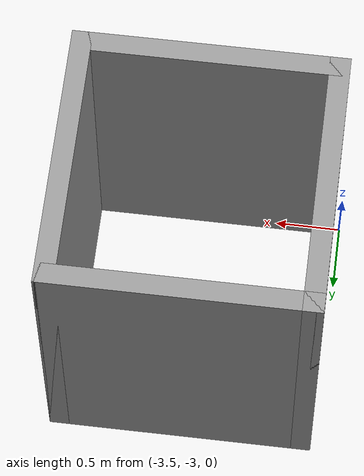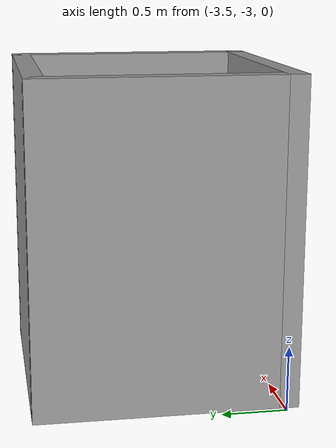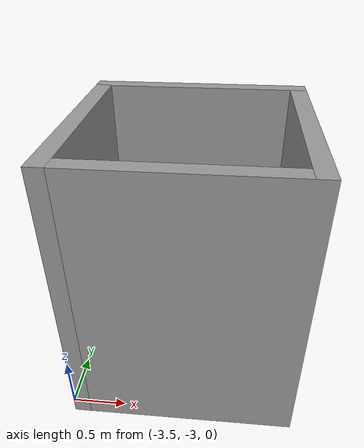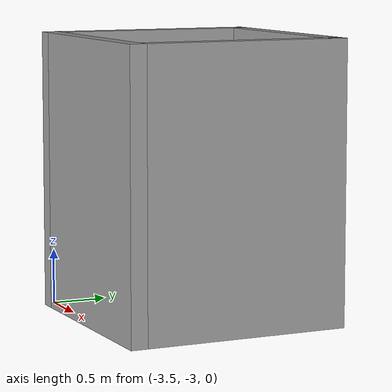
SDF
<?xml version='1.0'?>
<sdf version='1.7'>
  <model name='Untitled'>
    <pose>-1.7275 -1.5525 0 0 -0 0</pose>
    <link name='Wall_0'>
      <collision name='Wall_0_Collision'>
        <geometry>
          <box>
            <size>2 0.15 2.5</size>
          </box>
        </geometry>
        <pose>0 0 1.25 0 -0 0</pose>
      </collision>
      <visual name='Wall_0_Visual'>
        <pose>0 0 1.25 0 -0 0</pose>
        <geometry>
          <box>
            <size>2 0.15 2.5</size>
          </box>
        </geometry>
        <material>
          <script>
            <uri>file://media/materials/scripts/gazebo.material</uri>
            <name>Gazebo/Grey</name>
          </script>
          <ambient>1 1 1 1</ambient>
        </material>
        <meta>
          <layer>0</layer>
        </meta>
      </visual>
      <pose>-1.6525 -0.5525 0 0 -0 1.5708</pose>
    </link>
    <link name='Wall_1'>
      <collision name='Wall_1_Collision'>
        <geometry>
          <box>
            <size>2 0.15 2.5</size>
          </box>
        </geometry>
        <pose>0 0 1.25 0 -0 0</pose>
      </collision>
      <visual name='Wall_1_Visual'>
        <pose>0 0 1.25 0 -0 0</pose>
        <geometry>
          <box>
            <size>2 0.15 2.5</size>
          </box>
        </geometry>
        <material>
          <script>
            <uri>file://media/materials/scripts/gazebo.material</uri>
            <name>Gazebo/Grey</name>
          </script>
          <ambient>1 1 1 1</ambient>
        </material>
        <meta>
          <layer>0</layer>
        </meta>
      </visual>
      <pose>-0.7275 0.3725 0 0 -0 0</pose>
    </link>
    <link name='Wall_2'>
      <collision name='Wall_2_Collision'>
        <geometry>
          <box>
            <size>2 0.15 2.5</size>
          </box>
        </geometry>
        <pose>0 0 1.25 0 -0 0</pose>
      </collision>
      <visual name='Wall_2_Visual'>
        <pose>0 0 1.25 0 -0 0</pose>
        <geometry>
          <box>
            <size>2 0.15 2.5</size>
          </box>
        </geometry>
        <material>
          <script>
            <uri>file://media/materials/scripts/gazebo.material</uri>
            <name>Gazebo/Grey</name>
          </script>
          <ambient>1 1 1 1</ambient>
        </material>
        <meta>
          <layer>0</layer>
        </meta>
      </visual>
      <pose>0.1975 -0.5525 0 0 -0 -1.5708</pose>
    </link>
    <link name='Wall_3'>
      <collision name='Wall_3_Collision'>
        <geometry>
          <box>
            <size>2 0.15 2.5</size>
          </box>
        </geometry>
        <pose>0 0 1.25 0 -0 0</pose>
      </collision>
      <visual name='Wall_3_Visual'>
        <pose>0 0 1.25 0 -0 0</pose>
        <geometry>
          <box>
            <size>2 0.15 2.5</size>
          </box>
        </geometry>
        <material>
          <script>
            <uri>file://media/materials/scripts/gazebo.material</uri>
            <name>Gazebo/Grey</name>
          </script>
          <ambient>1 1 1 1</ambient>
        </material>
        <meta>
          <layer>0</layer>
        </meta>
      </visual>
      <pose>-0.7275 -1.4775 0 0 -0 3.14159</pose>
    </link>
    <static>1</static>
  </model>
</sdf>
